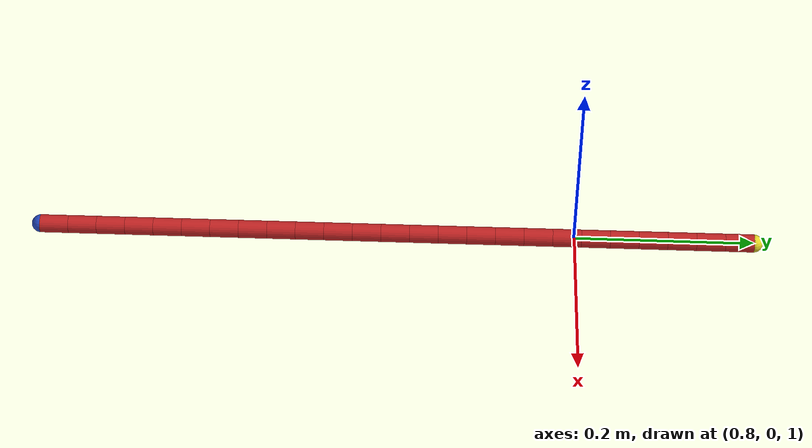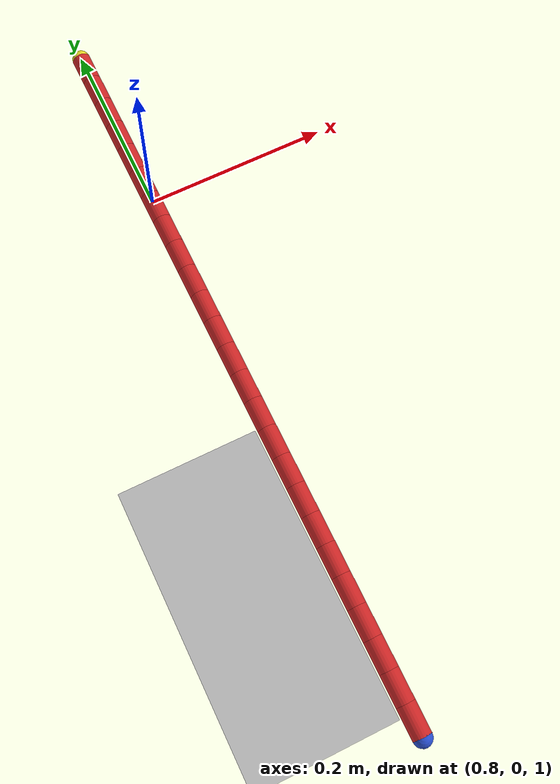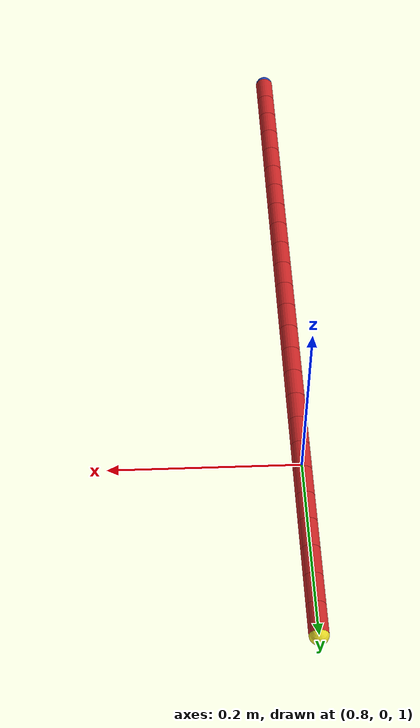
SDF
<?xml version="1.0" ?>
<sdf version="1.4">
    <world name="default">
        <scene>
            <grid>false</grid>
            <origin_visual>false</origin_visual>
            <sky>
                <clouds>
                    <speed>12</speed>
                </clouds>
            </sky>
        </scene>

        <physics type="ode">
            <ode>
                <solver>
                    <thread_position_correction>0</thread_position_correction>
                    <island_threads>2</island_threads>
                </solver>
                <constraints>
                    <erp>0.8</erp>
                </constraints>
            </ode>
        </physics>

        <plugin name="arm_gazebo_ros" filename="libarm_gazebo_ros_plugin.so"/>
        <plugin name="gazebo_ros_tf_plugin" filename="libgazebo_ros_tf_plugin.so"/>
        <plugin name="ros_link_attacher_plugin" filename="libgazebo_ros_link_attacher.so"/>
        <plugin name="position_3d_plugin" filename="libposition_3d_plugin.so"/>
        <plugin name="collision_map_plugin" filename="libcollision_map_plugin.so"/>

        <include>
            <uri>model://my_ground_plane</uri>
            <pose>0 0 -2 0 0 0</pose>
        </include>

        <include>
            <uri>model://sun</uri>
        </include>

        <!-- The Rope -->
        <include>
            <pose>0.8 -0.6 1.0 0 0 1.5707</pose>
            <uri>model://rope_3d</uri>
        </include>
    </world>
</sdf>

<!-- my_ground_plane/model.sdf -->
<sdf version="1.5">
    <model name="my_ground_plane">
        <static>true</static>
            <allow_auto_disable>true</allow_auto_disable>
        <link name="link">
            <collision name="collision">
                <geometry>
                    <plane>
                        <normal>0 0 1</normal>
                        <size>4 4</size>
                    </plane>
                </geometry>
                <surface>
                    <friction>
                        <ode>
                            <mu>1000</mu>
                            <mu2>1000</mu2>
                        </ode>
                    </friction>
                    <contact>
                        <ode>
                            <kp>1e15</kp>
                            <kd>1e10</kd>
                        </ode>
                    </contact>
                </surface>
            </collision>
            <visual name="visual">
                <cast_shadows>false</cast_shadows>
                <geometry>
                    <plane>
                        <normal>0 0 1</normal>
                        <size>4 4</size>
                    </plane>
                </geometry>
                <material>
                    <script>
                        <uri>model://my_ground_plane/concrete.material</uri>
                        <name>ConcreteTexture</name>
                    </script>
                </material>
            </visual>
        </link>
    </model>
</sdf>
